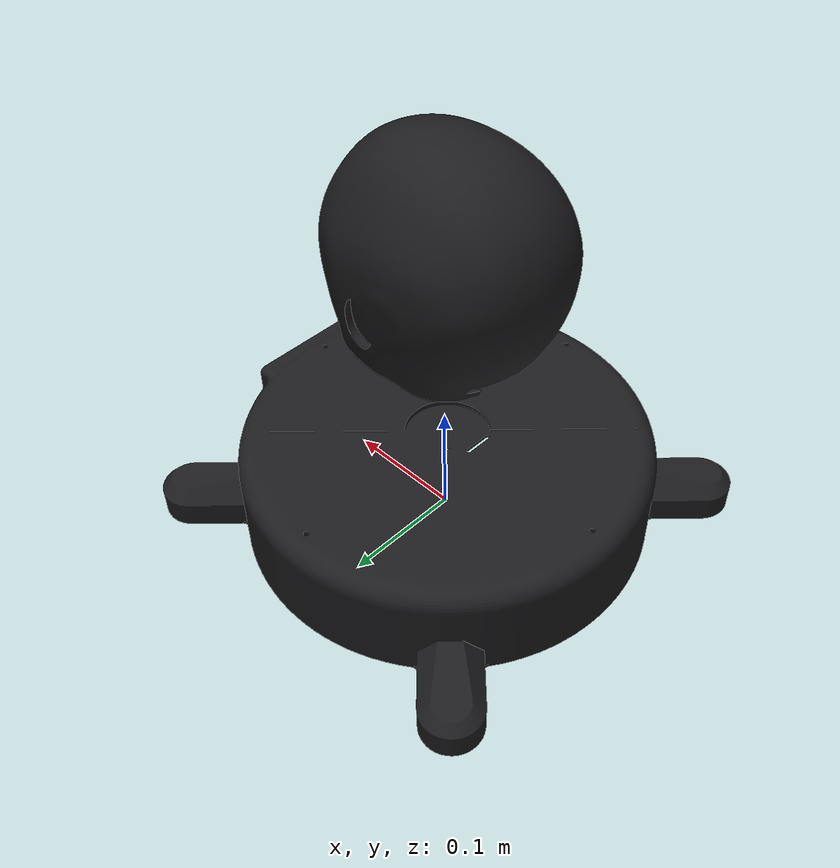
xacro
<?xml version="1.0" ?>
<robot name="Head_URDF" xmlns:xacro="http://www.ros.org/wiki/xacro">

<xacro:include filename="$(find Head_URDF_description)/urdf/materials.xacro" />
<xacro:include filename="$(find Head_URDF_description)/urdf/Head_URDF.trans" />
<xacro:include filename="$(find Head_URDF_description)/urdf/Head_URDF.gazebo" />
<link name="base_link">
  <inertial>
    <origin xyz="0.0001724280089281166 -0.007058857560234027 0.03281918027692268" rpy="0 0 0"/>
    <mass value="1.4301440355358608"/>
    <inertia ixx="0.019006" iyy="0.018146" izz="0.034289" ixy="1e-05" iyz="2e-06" ixz="7e-06"/>
  </inertial>
  <visual>
    <origin xyz="0 0 0" rpy="0 0 0"/>
    <geometry>
      <mesh filename="package://meshes/base_link.stl" scale="0.001 0.001 0.001"/>
    </geometry>
    <material name="silver"/>
  </visual>
  <collision>
    <origin xyz="0 0 0" rpy="0 0 0"/>
    <geometry>
      <mesh filename="package://meshes/base_link.stl" scale="0.001 0.001 0.001"/>
    </geometry>
  </collision>
</link>

<link name="head_1">
  <inertial>
    <origin xyz="0.005137197909531618 1.8300133261756404e-05 0.14817178980222098" rpy="0 0 0"/>
    <mass value="4.810819158080557"/>
    <inertia ixx="0.016307" iyy="0.020811" izz="0.017016" ixy="-5e-06" iyz="2e-06" ixz="0.00207"/>
  </inertial>
  <visual>
    <origin xyz="-0.004194 0.007079 -0.1212" rpy="0 0 0"/>
    <geometry>
      <mesh filename="package://meshes/head_1.stl" scale="0.001 0.001 0.001"/>
    </geometry>
    <material name="silver"/>
  </visual>
  <collision>
    <origin xyz="-0.004194 0.007079 -0.1212" rpy="0 0 0"/>
    <geometry>
      <mesh filename="package://meshes/head_1.stl" scale="0.001 0.001 0.001"/>
    </geometry>
  </collision>
</link>

<!-- Virtual Links for 3-Axis Rotation -->
<link name="yaw_link">
  <inertial>
    <origin xyz="0 0 0" rpy="0 0 0"/>
    <mass value="0.01"/>
    <inertia ixx="1e-6" iyy="1e-6" izz="1e-6" ixy="0" iyz="0" ixz="0"/>
  </inertial>
</link>

<link name="pitch_link">
  <inertial>
    <origin xyz="0 0 0" rpy="0 0 0"/>
    <mass value="0.01"/>
    <inertia ixx="1e-6" iyy="1e-6" izz="1e-6" ixy="0" iyz="0" ixz="0"/>
  </inertial>
</link>

<!-- Articulated Joints -->
<joint name="joint_yaw" type="continuous">
  <origin xyz="0.004194 -0.007079 0.145157" rpy="0 0 0"/>
  <parent link="base_link"/>
  <child link="yaw_link"/>
  <axis xyz="0 0 1"/>
</joint>

<joint name="joint_pitch" type="revolute">
  <origin xyz="0 0 0" rpy="0 0 0"/>
  <parent link="yaw_link"/>
  <child link="pitch_link"/>
  <axis xyz="0 1 0"/>
  <limit lower="-0.785" upper="0.785" effort="10.0" velocity="1.0"/>
</joint>

<joint name="joint_roll" type="revolute">
  <origin xyz="0 0 0" rpy="0 0 0"/>
  <parent link="pitch_link"/>
  <child link="head_1"/>
  <axis xyz="1 0 0"/>
  <limit lower="-0.785" upper="0.785" effort="10.0" velocity="1.0"/>
</joint>

</robot>

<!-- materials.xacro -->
<robot name="Head_URDF" xmlns:xacro="http://www.ros.org/wiki/xacro" >
  <!-- Base link: dark gray/black. Head: skin tone. Overridden in app for exact colors. -->
  <material name="base_material">
    <color rgba="0.11 0.11 0.12 1.0"/>
  </material>
  <material name="head_material">
    <color rgba="0.83 0.65 0.45 1.0"/>
  </material>
  <material name="silver">
    <color rgba="0.11 0.11 0.12 1.0"/>
  </material>
</robot>
